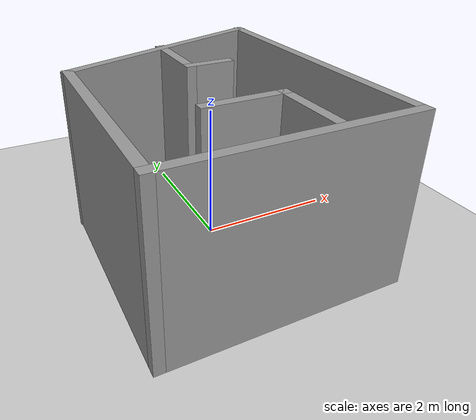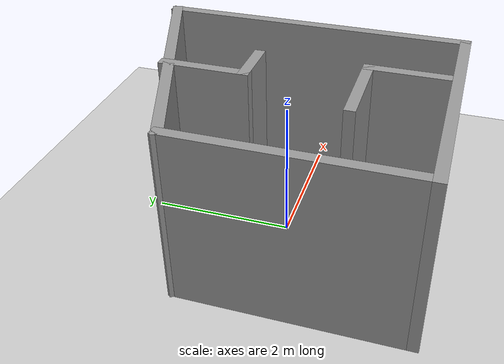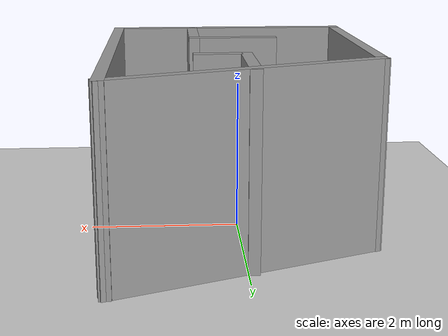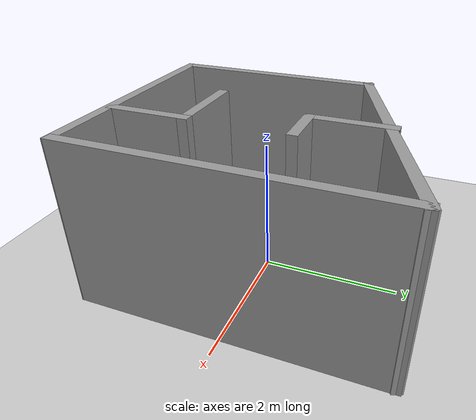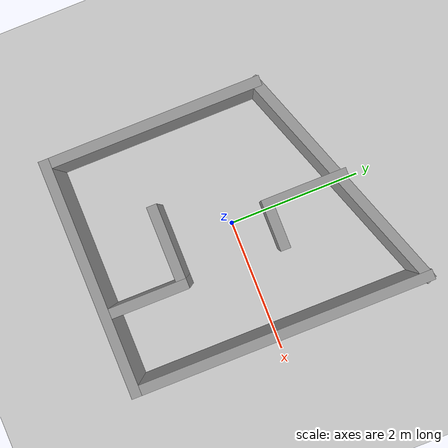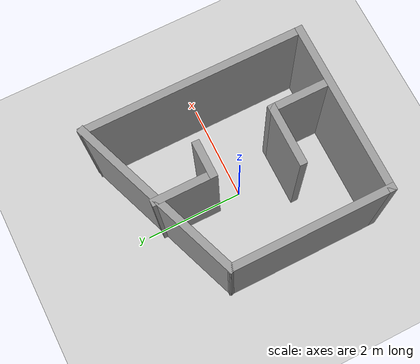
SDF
<sdf version="1.7">
 <world name="default">
  <light name="sun" type="directional">
   <pose>0 0 10 0 -0 0</pose>
   <diffuse>0.8 0.8 0.8 1</diffuse>
   <specular>0.2 0.2 0.2 1</specular>
   <attenuation>
    <range>1000</range>
    <constant>0.9</constant>
    <linear>0.01</linear>
    <quadratic>0.001</quadratic>
   </attenuation>
   <direction>-0.5 0.1 -0.9</direction>
   <spot><inner_angle>0</inner_angle><outer_angle>0</outer_angle><falloff>0</falloff></spot>
  </light>
  <model name="ground_plane">
   <static>1</static>
   <link name="link">
    <collision name="collision">
     <geometry><plane><normal>0 0 1</normal><size>100 100</size></plane></geometry>
     <surface><friction><ode><mu>100</mu><mu2>50</mu2></ode></friction></surface>
    </collision>
    <visual name="visual">
     <cast_shadows>0</cast_shadows>
     <geometry><plane><normal>0 0 1</normal><size>100 100</size></plane></geometry>
     <material>
      <script><uri>file://media/materials/scripts/gazebo.material</uri><name>Gazebo/Grey</name></script>
     </material>
    </visual>
   </link>
  </model>
  <gravity>0 0 -9.8</gravity>
  <magnetic_field>6e-06 2.3e-05 -4.2e-05</magnetic_field>
  <atmosphere type="adiabatic"/>
  <physics type="ode">
   <max_step_size>0.001</max_step_size>
   <real_time_factor>1</real_time_factor>
   <real_time_update_rate>1000</real_time_update_rate>
  </physics>
  <scene><ambient>0.4 0.4 0.4 1</ambient><background>0.7 0.7 0.7 1</background><shadows>1</shadows></scene>
  <audio><device>default</device></audio>
  <spherical_coordinates>
   <surface_model>EARTH_WGS84</surface_model>
   <latitude_deg>0</latitude_deg>
   <longitude_deg>0</longitude_deg>
   <elevation>0</elevation>
   <heading_deg>0</heading_deg>
  </spherical_coordinates>
  <model name="mbot_maze2">
   <pose>-0.003 0.096584 0 0 -0 0</pose>
   <link name="Wall_1">
    <collision name="Wall_1_Collision">
     <geometry><box><size>3.5 0.15 2.5</size></box></geometry>
     <pose>0 0 1.25 0 -0 0</pose>
    </collision>
    <visual name="Wall_1_Visual">
     <pose>0 0 1.25 0 -0 0</pose>
     <geometry><box><size>3.5 0.15 2.5</size></box></geometry>
     <material>
      <script><uri>file://media/materials/scripts/gazebo.material</uri><name>Gazebo/Grey</name></script>
      <ambient>1 1 1 1</ambient>
     </material>
     <meta><layer>0</layer></meta>
    </visual>
    <pose>0 -2.17805 0 0 -0 0</pose>
   </link>
   <link name="Wall_10">
    <collision name="Wall_10_Collision">
     <geometry><box><size>1.25 0.15 2.5</size></box></geometry>
     <pose>0 0 1.25 0 -0 0</pose>
    </collision>
    <visual name="Wall_10_Visual">
     <pose>0 0 1.25 0 -0 0</pose>
     <geometry><box><size>1.25 0.15 2.5</size></box></geometry>
     <material>
      <script><uri>file://media/materials/scripts/gazebo.material</uri><name>Gazebo/Grey</name></script>
      <ambient>1 1 1 1</ambient>
     </material>
     <meta><layer>0</layer></meta>
    </visual>
    <pose>-0.05922 1.01872 0 0 -0 -1.5708</pose>
   </link>
   <link name="Wall_11">
    <collision name="Wall_11_Collision">
     <geometry><box><size>0.75 0.15 2.5</size></box></geometry>
     <pose>0 0 1.25 0 -0 0</pose>
    </collision>
    <visual name="Wall_11_Visual">
     <pose>0 0 1.25 0 -0 0</pose>
     <geometry><box><size>0.75 0.15 2.5</size></box></geometry>
     <material>
      <script><uri>file://media/materials/scripts/gazebo.material</uri><name>Gazebo/Grey</name></script>
      <ambient>1 1 1 1</ambient>
     </material>
     <meta><layer>0</layer></meta>
    </visual>
    <pose>0.24078 0.468723 0 0 -0 0</pose>
   </link>
   <link name="Wall_2">
    <collision name="Wall_2_Collision">
     <geometry><box><size>4.46958 0.15 2.5</size></box></geometry>
     <pose>0 0 1.25 0 -0 0</pose>
    </collision>
    <visual name="Wall_2_Visual">
     <pose>0 0 1.25 0 -0 0</pose>
     <geometry><box><size>4.46958 0.15 2.5</size></box></geometry>
     <material>
      <script><uri>file://media/materials/scripts/gazebo.material</uri><name>Gazebo/Grey</name></script>
      <ambient>1 1 1 1</ambient>
     </material>
     <meta><layer>0</layer></meta>
    </visual>
    <pose>1.675 -0.003051 0 0 -0 1.5708</pose>
   </link>
   <link name="Wall_4">
    <collision name="Wall_4_Collision">
     <geometry><box><size>3.25 0.15 2.5</size></box></geometry>
     <pose>0 0 1.25 0 -0 0</pose>
    </collision>
    <visual name="Wall_4_Visual">
     <pose>0 0 1.25 0 -0 0</pose>
     <geometry><box><size>3.25 0.15 2.5</size></box></geometry>
     <material>
      <script><uri>file://media/materials/scripts/gazebo.material</uri><name>Gazebo/Grey</name></script>
      <ambient>1 1 1 1</ambient>
     </material>
     <meta><layer>0</layer></meta>
    </visual>
    <pose>-1.675 -0.628051 0 0 -0 1.5708</pose>
   </link>
   <link name="Wall_5">
    <collision name="Wall_5_Collision">
     <geometry><box><size>3.72032 0.15 2.5</size></box></geometry>
     <pose>0 0 1.25 0 -0 0</pose>
    </collision>
    <visual name="Wall_5_Visual">
     <pose>0 0 1.25 0 -0 0</pose>
     <geometry><box><size>3.72032 0.15 2.5</size></box></geometry>
     <material>
      <script><uri>file://media/materials/scripts/gazebo.material</uri><name>Gazebo/Grey</name></script>
      <ambient>1 1 1 1</ambient>
     </material>
     <meta><layer>0</layer></meta>
    </visual>
    <pose>0 1.53934 0 0 -0 0.353143</pose>
   </link>
   <link name="Wall_7">
    <collision name="Wall_7_Collision">
     <geometry><box><size>1.25 0.15 2.5</size></box></geometry>
     <pose>0 0 1.25 0 -0 0</pose>
    </collision>
    <visual name="Wall_7_Visual">
     <pose>0 0 1.25 0 -0 0</pose>
     <geometry><box><size>1.25 0.15 2.5</size></box></geometry>
     <material>
      <script><uri>file://media/materials/scripts/gazebo.material</uri><name>Gazebo/Grey</name></script>
      <ambient>1 1 1 1</ambient>
     </material>
     <meta><layer>0</layer></meta>
    </visual>
    <pose>0.54913 -1.577 0 0 -0 1.5708</pose>
   </link>
   <link name="Wall_8">
    <collision name="Wall_8_Collision">
     <geometry><box><size>1.25 0.15 2.5</size></box></geometry>
     <pose>0 0 1.25 0 -0 0</pose>
    </collision>
    <visual name="Wall_8_Visual">
     <pose>0 0 1.25 0 -0 0</pose>
     <geometry><box><size>1.25 0.15 2.5</size></box></geometry>
     <material>
      <script><uri>file://media/materials/scripts/gazebo.material</uri><name>Gazebo/Grey</name></script>
      <ambient>1 1 1 1</ambient>
     </material>
     <meta><layer>0</layer></meta>
    </visual>
    <pose>-0.00087 -1.027 0 0 -0 3.14159</pose>
   </link>
   <static>1</static>
  </model>
 </world>
</sdf>
